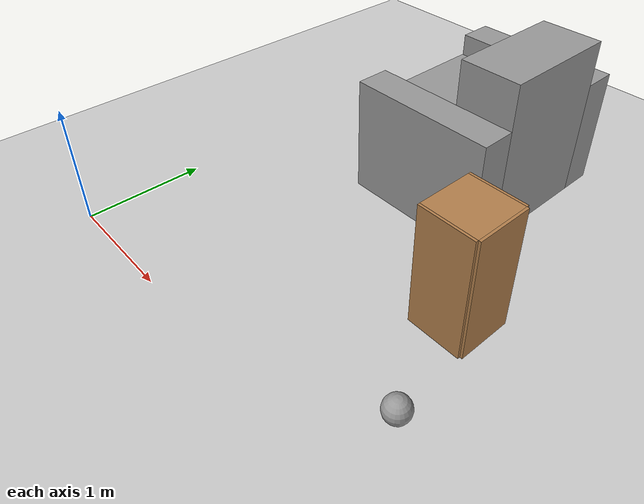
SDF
<sdf version="1.6">
 <world name="default">
  <model name="ground_plane">
   <static>1</static>
   <link name="link">
    <collision name="collision">
     <geometry><plane><normal>0 0 1</normal><size>100 100</size></plane></geometry>
     <surface><friction><ode><mu>100</mu><mu2>50</mu2></ode></friction></surface>
    </collision>
    <visual name="visual">
     <cast_shadows>0</cast_shadows>
     <geometry><plane><normal>0 0 1</normal><size>100 100</size></plane></geometry>
     <material>
      <script><uri>file://media/materials/scripts/gazebo.material</uri><name>Gazebo/Grey</name></script>
     </material>
    </visual>
   </link>
  </model>
  <model name="small_sofa_0_clone">
   <link name="link_0">
    <pose>-0.343323 0 0.163374 0 -0 0</pose>
    <inertial>
     <mass>0.692242</mass>
     <inertia>
      <ixx>0.165884</ixx>
      <ixy>0</ixy>
      <ixz>0</ixz>
      <iyy>0.123566</iyy>
      <iyz>0</iyz>
      <izz>0.0719312</izz>
     </inertia>
    </inertial>
    <visual name="visual">
     <geometry><box><size>0.50663 0.995112 1.37309</size></box></geometry>
     <material>
      <lighting>1</lighting>
      <script><uri>file://media/materials/scripts/gazebo.material</uri><name>Gazebo/Grey</name></script>
      <ambient>0.3 0.3 0.3 1</ambient>
      <diffuse>0.7 0.7 0.7 1</diffuse>
      <specular>0.01 0.01 0.01 1</specular>
      <emissive>0 0 0 1</emissive>
     </material>
    </visual>
    <collision name="collision">
     <geometry><box><size>0.50663 0.995112 1.37309</size></box></geometry>
     <surface>
      <friction>
       <ode><mu>1</mu><mu2>1</mu2><fdir1>0 0 0</fdir1><slip1>0</slip1><slip2>0</slip2></ode>
       <torsional>
        <coefficient>1</coefficient>
        <patch_radius>0</patch_radius>
        <surface_radius>0</surface_radius>
        <use_patch_radius>1</use_patch_radius>
        <ode><slip>0</slip></ode>
       </torsional>
      </friction>
      <bounce><restitution_coefficient>0</restitution_coefficient><threshold>1e+06</threshold></bounce>
      <contact>
       <collide_without_contact>0</collide_without_contact>
       <collide_without_contact_bitmask>1</collide_without_contact_bitmask>
       <collide_bitmask>1</collide_bitmask>
       <ode>
        <soft_cfm>0</soft_cfm>
        <soft_erp>0.2</soft_erp>
        <kp>1e+13</kp>
        <kd>1</kd>
        <max_vel>0.01</max_vel>
        <min_depth>0</min_depth>
       </ode>
       <bullet>
        <split_impulse>1</split_impulse>
        <split_impulse_penetration_threshold>-0.01</split_impulse_penetration_threshold>
        <soft_cfm>0</soft_cfm>
        <soft_erp>0.2</soft_erp>
        <kp>1e+13</kp>
        <kd>1</kd>
       </bullet>
      </contact>
     </surface>
    </collision>
   </link>
   <link name="link_0_clone">
    <pose>0.284589 0 -0.11703 0 -0 0</pose>
    <inertial>
     <mass>0.605576</mass>
     <inertia>
      <ixx>0.0832689</ixx>
      <ixy>0</ixy>
      <ixz>0</ixz>
      <iyy>0.0616212</iyy>
      <iyz>0</iyz>
      <izz>0.0782979</izz>
     </inertia>
    </inertial>
    <visual name="visual">
     <geometry><box><size>0.749193 0.995112 0.812285</size></box></geometry>
     <material>
      <lighting>1</lighting>
      <script><uri>file://media/materials/scripts/gazebo.material</uri><name>Gazebo/Grey</name></script>
      <ambient>0.3 0.3 0.3 1</ambient>
      <diffuse>0.7 0.7 0.7 1</diffuse>
      <specular>0.01 0.01 0.01 1</specular>
      <emissive>0 0 0 1</emissive>
      <shader type="pixel"/>
     </material>
    </visual>
    <collision name="collision">
     <geometry><box><size>0.749193 0.995112 0.812285</size></box></geometry>
     <surface>
      <friction>
       <ode><mu>1</mu><mu2>1</mu2><fdir1>0 0 0</fdir1><slip1>0</slip1><slip2>0</slip2></ode>
       <torsional>
        <coefficient>1</coefficient>
        <patch_radius>0</patch_radius>
        <surface_radius>0</surface_radius>
        <use_patch_radius>1</use_patch_radius>
        <ode><slip>0</slip></ode>
       </torsional>
      </friction>
      <bounce><restitution_coefficient>0</restitution_coefficient><threshold>1e+06</threshold></bounce>
      <contact>
       <collide_without_contact>0</collide_without_contact>
       <collide_without_contact_bitmask>1</collide_without_contact_bitmask>
       <collide_bitmask>1</collide_bitmask>
       <ode>
        <soft_cfm>0</soft_cfm>
        <soft_erp>0.2</soft_erp>
        <kp>1e+13</kp>
        <kd>1</kd>
        <max_vel>0.01</max_vel>
        <min_depth>0</min_depth>
       </ode>
       <bullet>
        <split_impulse>1</split_impulse>
        <split_impulse_penetration_threshold>-0.01</split_impulse_penetration_threshold>
        <soft_cfm>0</soft_cfm>
        <soft_erp>0.2</soft_erp>
        <kp>1e+13</kp>
        <kd>1</kd>
       </bullet>
      </contact>
     </surface>
    </collision>
   </link>
   <link name="link_1">
    <pose>0.029367 0.639671 -0.023172 0 -0 0</pose>
    <inertial>
     <mass>0.355854</mass>
     <inertia>
      <ixx>0.0320502</ixx>
      <ixy>0</ixy>
      <ixz>0</ixz>
      <iyy>0.0761386</iyy>
      <iyz>0</iyz>
      <izz>0.0488797</izz>
     </inertia>
    </inertial>
    <visual name="visual">
     <geometry><box><size>1.25201 0.284226 1</size></box></geometry>
     <material>
      <lighting>1</lighting>
      <script><uri>file://media/materials/scripts/gazebo.material</uri><name>Gazebo/Grey</name></script>
      <ambient>0.3 0.3 0.3 1</ambient>
      <diffuse>0.7 0.7 0.7 1</diffuse>
      <specular>0.01 0.01 0.01 1</specular>
      <emissive>0 0 0 1</emissive>
     </material>
    </visual>
    <collision name="collision">
     <geometry><box><size>1.25201 0.284226 1</size></box></geometry>
     <surface>
      <friction>
       <ode><mu>1</mu><mu2>1</mu2><fdir1>0 0 0</fdir1><slip1>0</slip1><slip2>0</slip2></ode>
       <torsional>
        <coefficient>1</coefficient>
        <patch_radius>0</patch_radius>
        <surface_radius>0</surface_radius>
        <use_patch_radius>1</use_patch_radius>
        <ode><slip>0</slip></ode>
       </torsional>
      </friction>
      <bounce><restitution_coefficient>0</restitution_coefficient><threshold>1e+06</threshold></bounce>
      <contact>
       <collide_without_contact>0</collide_without_contact>
       <collide_without_contact_bitmask>1</collide_without_contact_bitmask>
       <collide_bitmask>1</collide_bitmask>
       <ode>
        <soft_cfm>0</soft_cfm>
        <soft_erp>0.2</soft_erp>
        <kp>1e+13</kp>
        <kd>1</kd>
        <max_vel>0.01</max_vel>
        <min_depth>0</min_depth>
       </ode>
       <bullet>
        <split_impulse>1</split_impulse>
        <split_impulse_penetration_threshold>-0.01</split_impulse_penetration_threshold>
        <soft_cfm>0</soft_cfm>
        <soft_erp>0.2</soft_erp>
        <kp>1e+13</kp>
        <kd>1</kd>
       </bullet>
      </contact>
     </surface>
    </collision>
   </link>
   <link name="link_1_clone">
    <pose>0.029367 -0.639671 -0.023172 0 -0 0</pose>
    <inertial>
     <mass>0.355854</mass>
     <inertia>
      <ixx>0.0320502</ixx>
      <ixy>0</ixy>
      <ixz>0</ixz>
      <iyy>0.0761386</iyy>
      <iyz>0</iyz>
      <izz>0.0488797</izz>
     </inertia>
    </inertial>
    <visual name="visual">
     <geometry><box><size>1.25201 0.284226 1</size></box></geometry>
     <material>
      <lighting>1</lighting>
      <script><uri>file://media/materials/scripts/gazebo.material</uri><name>Gazebo/Grey</name></script>
      <ambient>0.3 0.3 0.3 1</ambient>
      <diffuse>0.7 0.7 0.7 1</diffuse>
      <specular>0.01 0.01 0.01 1</specular>
      <emissive>0 0 0 1</emissive>
      <shader type="pixel"/>
     </material>
    </visual>
    <collision name="collision">
     <geometry><box><size>1.25201 0.284226 1</size></box></geometry>
     <surface>
      <friction>
       <ode><mu>1</mu><mu2>1</mu2><fdir1>0 0 0</fdir1><slip1>0</slip1><slip2>0</slip2></ode>
       <torsional>
        <coefficient>1</coefficient>
        <patch_radius>0</patch_radius>
        <surface_radius>0</surface_radius>
        <use_patch_radius>1</use_patch_radius>
        <ode><slip>0</slip></ode>
       </torsional>
      </friction>
      <bounce><restitution_coefficient>0</restitution_coefficient><threshold>1e+06</threshold></bounce>
      <contact>
       <collide_without_contact>0</collide_without_contact>
       <collide_without_contact_bitmask>1</collide_without_contact_bitmask>
       <collide_bitmask>1</collide_bitmask>
       <ode>
        <soft_cfm>0</soft_cfm>
        <soft_erp>0.2</soft_erp>
        <kp>1e+13</kp>
        <kd>1</kd>
        <max_vel>0.01</max_vel>
        <min_depth>0</min_depth>
       </ode>
       <bullet>
        <split_impulse>1</split_impulse>
        <split_impulse_penetration_threshold>-0.01</split_impulse_penetration_threshold>
        <soft_cfm>0</soft_cfm>
        <soft_erp>0.2</soft_erp>
        <kp>1e+13</kp>
        <kd>1</kd>
       </bullet>
      </contact>
     </surface>
    </collision>
   </link>
   <joint name="link_0_JOINT_1" type="revolute">
    <parent>link_0</parent>
    <child>link_1_clone</child>
    <axis>
     <xyz>1 0 0</xyz>
     <use_parent_model_frame>0</use_parent_model_frame>
     <limit>
      <lower>-1.79769e+308</lower>
      <upper>1.79769e+308</upper>
      <effort>-1</effort>
      <velocity>-1</velocity>
     </limit>
     <dynamics>
      <spring_reference>0</spring_reference>
      <spring_stiffness>0</spring_stiffness>
      <damping>0</damping>
     </dynamics>
    </axis>
    <physics>
     <ode><limit><cfm>0</cfm><erp>0.2</erp></limit><suspension><cfm>0</cfm><erp>0.2</erp></suspension></ode>
    </physics>
   </joint>
   <joint name="link_0_JOINT_2" type="revolute">
    <parent>link_0</parent>
    <child>link_0_clone</child>
    <axis>
     <xyz>1 0 0</xyz>
     <use_parent_model_frame>0</use_parent_model_frame>
     <limit>
      <lower>-1.79769e+308</lower>
      <upper>1.79769e+308</upper>
      <effort>-1</effort>
      <velocity>-1</velocity>
     </limit>
     <dynamics>
      <spring_reference>0</spring_reference>
      <spring_stiffness>0</spring_stiffness>
      <damping>0</damping>
     </dynamics>
    </axis>
    <physics>
     <ode><limit><cfm>0</cfm><erp>0.2</erp></limit><suspension><cfm>0</cfm><erp>0.2</erp></suspension></ode>
    </physics>
   </joint>
   <joint name="link_1_JOINT_0" type="revolute">
    <parent>link_1</parent>
    <child>link_0</child>
    <axis>
     <xyz>1 0 0</xyz>
     <use_parent_model_frame>0</use_parent_model_frame>
     <limit>
      <lower>-1.79769e+308</lower>
      <upper>1.79769e+308</upper>
      <effort>-1</effort>
      <velocity>-1</velocity>
     </limit>
     <dynamics>
      <spring_reference>0</spring_reference>
      <spring_stiffness>0</spring_stiffness>
      <damping>0</damping>
     </dynamics>
    </axis>
    <physics>
     <ode><limit><cfm>0</cfm><erp>0.2</erp></limit><suspension><cfm>0</cfm><erp>0.2</erp></suspension></ode>
    </physics>
   </joint>
   <static>0</static>
   <pose>1.78078 2.7275 0.523173 0 -3e-06 -3.13604</pose>
  </model>
  <model name="my_ball">
   <link name="link_0">
    <pose>3 0.533534 0.5 0 -0 0</pose>
    <inertial>
     <mass>0.2</mass>
     <inertia><ixx>0.1</ixx><ixy>0</ixy><ixz>0</ixz><iyy>0.1</iyy><iyz>0</iyz><izz>0.1</izz></inertia>
    </inertial>
    <visual name="visual">
     <geometry><sphere><radius>0.1</radius></sphere></geometry>
     <material>
      <lighting>1</lighting>
      <script><uri>file://media/materials/scripts/gazebo.material</uri><name>Gazebo/Grey</name></script>
      <ambient>1 1 1 1</ambient>
      <diffuse>1 1 1 1</diffuse>
      <specular>1 1 1 1</specular>
      <emissive>1 1 1 1</emissive>
      <shader type="vertex"><normal_map>__default__</normal_map></shader>
     </material>
    </visual>
    <collision name="collision">
     <geometry><sphere><radius>0.1</radius></sphere></geometry>
     <surface>
      <friction>
       <ode><mu>1</mu><mu2>1</mu2><fdir1>0 0 0</fdir1><slip1>0</slip1><slip2>0</slip2></ode>
       <torsional>
        <coefficient>1</coefficient>
        <patch_radius>0</patch_radius>
        <surface_radius>0</surface_radius>
        <use_patch_radius>1</use_patch_radius>
        <ode><slip>0</slip></ode>
       </torsional>
      </friction>
      <bounce><restitution_coefficient>0</restitution_coefficient><threshold>1e+06</threshold></bounce>
      <contact>
       <collide_without_contact>0</collide_without_contact>
       <collide_without_contact_bitmask>1</collide_without_contact_bitmask>
       <collide_bitmask>1</collide_bitmask>
       <ode>
        <soft_cfm>0</soft_cfm>
        <soft_erp>0.2</soft_erp>
        <kp>1e+13</kp>
        <kd>1</kd>
        <max_vel>0.01</max_vel>
        <min_depth>0</min_depth>
       </ode>
       <bullet>
        <split_impulse>1</split_impulse>
        <split_impulse_penetration_threshold>-0.01</split_impulse_penetration_threshold>
        <soft_cfm>0</soft_cfm>
        <soft_erp>0.2</soft_erp>
        <kp>1e+13</kp>
        <kd>1</kd>
       </bullet>
      </contact>
     </surface>
    </collision>
   </link>
   <static>0</static>
   <pose>0 0 -0.4 0 -0 0</pose>
  </model>
  <model name="cabinet_0">
   <static>1</static>
   <link name="cabinet_bottom_plate">
    <inertial>
     <pose>0 0 -1 0 -0 0</pose>
     <inertia><ixx>2.05</ixx><ixy>0</ixy><ixz>0</ixz><iyy>2.05</iyy><iyz>0</iyz><izz>2.05</izz></inertia>
     <mass>25</mass>
    </inertial>
    <collision name="cabinet_bottom_plate_geom">
     <pose>0 0 0.01 0 -0 0</pose>
     <geometry><box><size>0.45 0.45 0.02</size></box></geometry>
    </collision>
    <visual name="cabinet_bottom_plate_geom_visual">
     <pose>0 0 0.01 0 -0 0</pose>
     <geometry><box><size>0.45 0.45 0.02</size></box></geometry>
     <material>
      <script><uri>file://media/materials/scripts/gazebo.material</uri><name>Gazebo/Wood</name></script>
     </material>
    </visual>
    <collision name="cabinet_bottom_plate_geom_cabinet_back_plate">
     <pose>0.235 0 0.51 0 -0 0</pose>
     <geometry><box><size>0.02 0.45 1.02</size></box></geometry>
    </collision>
    <visual name="cabinet_bottom_plate_geom_cabinet_back_plate_visual">
     <pose>0.235 0 0.51 0 -0 0</pose>
     <geometry><box><size>0.02 0.45 1.02</size></box></geometry>
     <material>
      <script><uri>file://media/materials/scripts/gazebo.material</uri><name>Gazebo/Wood</name></script>
     </material>
    </visual>
    <collision name="cabinet_bottom_plate_geom_cabinet_left_plate">
     <pose>0 0.235 0.51 0 -0 0</pose>
     <geometry><box><size>0.45 0.02 1.02</size></box></geometry>
    </collision>
    <visual name="cabinet_bottom_plate_geom_cabinet_left_plate_visual">
     <pose>0 0.235 0.51 0 -0 0</pose>
     <geometry><box><size>0.45 0.02 1.02</size></box></geometry>
     <material>
      <script><uri>file://media/materials/scripts/gazebo.material</uri><name>Gazebo/Wood</name></script>
     </material>
    </visual>
    <collision name="cabinet_bottom_plate_geom_cabinet_middle_plate">
     <pose>0 0 0.51 0 -0 0</pose>
     <geometry><box><size>0.45 0.45 0.02</size></box></geometry>
    </collision>
    <visual name="cabinet_bottom_plate_geom_cabinet_middle_plate_visual">
     <pose>0 0 0.51 0 -0 0</pose>
     <geometry><box><size>0.45 0.45 0.02</size></box></geometry>
     <material>
      <script><uri>file://media/materials/scripts/gazebo.material</uri><name>Gazebo/Wood</name></script>
     </material>
    </visual>
    <collision name="cabinet_bottom_plate_geom_cabinet_right_plate">
     <pose>0 -0.235 0.51 0 -0 0</pose>
     <geometry><box><size>0.45 0.02 1.02</size></box></geometry>
    </collision>
    <visual name="cabinet_bottom_plate_geom_cabinet_right_plate_visual">
     <pose>0 -0.235 0.51 0 -0 0</pose>
     <geometry><box><size>0.45 0.02 1.02</size></box></geometry>
     <material>
      <script><uri>file://media/materials/scripts/gazebo.material</uri><name>Gazebo/Wood</name></script>
     </material>
    </visual>
    <collision name="cabinet_bottom_plate_geom_cabinet_top_plate">
     <pose>0 0 1.01 0 -0 0</pose>
     <geometry><box><size>0.45 0.45 0.02</size></box></geometry>
    </collision>
    <visual name="cabinet_bottom_plate_geom_cabinet_top_plate_visual">
     <pose>0 0 1.01 0 -0 0</pose>
     <geometry><box><size>0.45 0.45 0.02</size></box></geometry>
     <material>
      <script><uri>file://media/materials/scripts/gazebo.material</uri><name>Gazebo/Wood</name></script>
     </material>
    </visual>
   </link>
   <pose>2.72892 1.38886 0 0 -0 0</pose>
  </model>
 </world>
</sdf>
